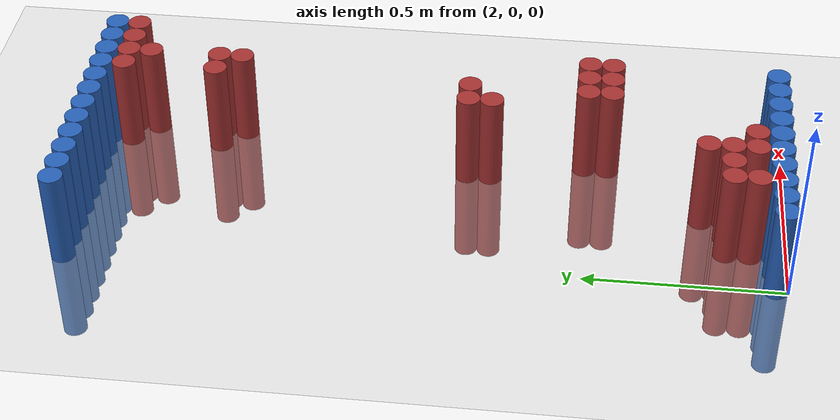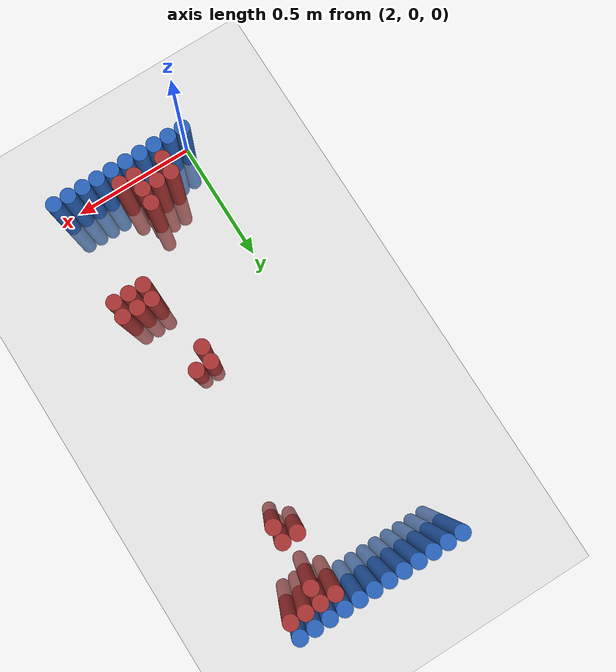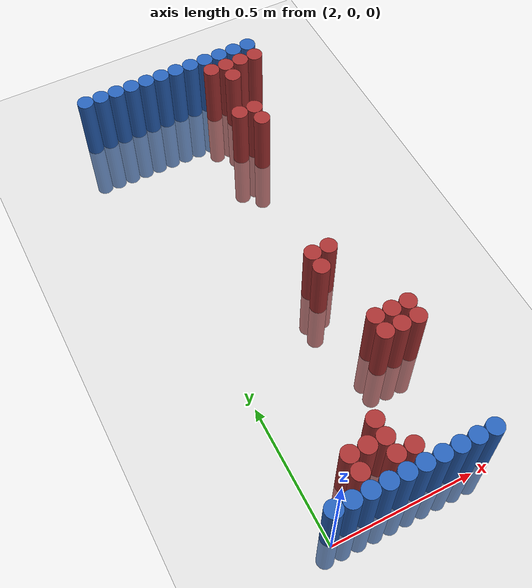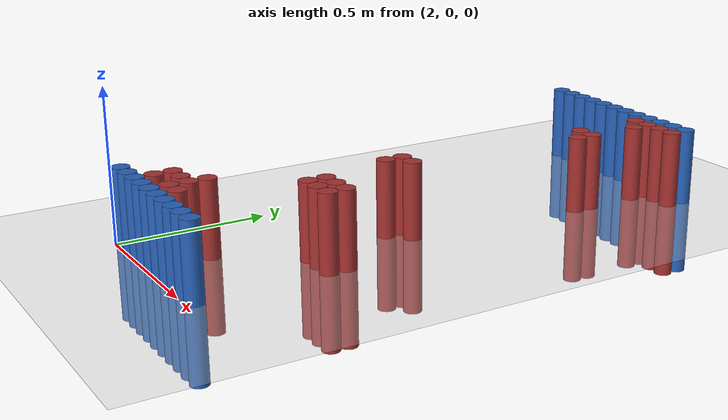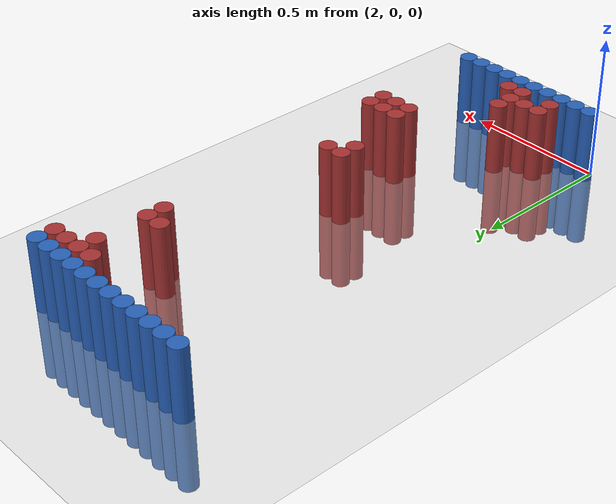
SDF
<sdf version="1.6">
 <world name="default">
  <model name="ground_plane">
   <static>1</static>
   <link name="link">
    <collision name="collision">
     <geometry><plane><normal>0 0 1</normal><size>100 100</size></plane></geometry>
     <surface><friction><ode><mu>100</mu><mu2>50</mu2></ode></friction></surface>
    </collision>
    <visual name="visual">
     <cast_shadows>0</cast_shadows>
     <geometry><plane><normal>0 0 1</normal><size>100 100</size></plane></geometry>
     <material>
      <script><uri>file://media/materials/scripts/gazebo.material</uri><name>Gazebo/Grey</name></script>
     </material>
    </visual>
   </link>
  </model>
  <model name="unit_cylinder_92">
   <static>1</static>
   <pose>1.950000 1.770000 0.000000 0.000000 0.000000 0.000000</pose>
   <link name="link">
    <inertial>
     <mass>1</mass>
     <inertia><ixx>0.145833</ixx><ixy>0</ixy><ixz>0</ixz><iyy>0.145833</iyy><iyz>0</iyz><izz>0.125</izz></inertia>
    </inertial>
    <collision name="collision">
     <geometry><cylinder><radius>0.030000</radius><length>0.5</length></cylinder></geometry>
    </collision>
    <visual name="visual">
     <geometry><cylinder><radius>0.030000</radius><length>0.5</length></cylinder></geometry>
     <material>
      <ambient>0.152000 0.379000 0.720000 1</ambient>
      <diffuse>0.152000 0.379000 0.720000 1</diffuse>
     </material>
     <material>
      <script><name>Gazebo/Grey</name><uri>file://media/materials/scripts/gazebo.material</uri></script>
     </material>
    </visual>
   </link>
  </model>
  <model name="unit_cylinder_93">
   <static>1</static>
   <pose>2.010000 0.030000 0.000000 0.000000 0.000000 0.000000</pose>
   <link name="link">
    <inertial>
     <mass>1</mass>
     <inertia><ixx>0.145833</ixx><ixy>0</ixy><ixz>0</ixz><iyy>0.145833</iyy><iyz>0</iyz><izz>0.125</izz></inertia>
    </inertial>
    <collision name="collision">
     <geometry><cylinder><radius>0.030000</radius><length>0.5</length></cylinder></geometry>
    </collision>
    <visual name="visual">
     <geometry><cylinder><radius>0.030000</radius><length>0.5</length></cylinder></geometry>
     <material>
      <ambient>0.152000 0.379000 0.720000 1</ambient>
      <diffuse>0.152000 0.379000 0.720000 1</diffuse>
     </material>
     <material>
      <script><name>Gazebo/Grey</name><uri>file://media/materials/scripts/gazebo.material</uri></script>
     </material>
    </visual>
   </link>
  </model>
  <model name="unit_cylinder_94">
   <static>1</static>
   <pose>2.010000 1.770000 0.000000 0.000000 0.000000 0.000000</pose>
   <link name="link">
    <inertial>
     <mass>1</mass>
     <inertia><ixx>0.145833</ixx><ixy>0</ixy><ixz>0</ixz><iyy>0.145833</iyy><iyz>0</iyz><izz>0.125</izz></inertia>
    </inertial>
    <collision name="collision">
     <geometry><cylinder><radius>0.030000</radius><length>0.5</length></cylinder></geometry>
    </collision>
    <visual name="visual">
     <geometry><cylinder><radius>0.030000</radius><length>0.5</length></cylinder></geometry>
     <material>
      <ambient>0.152000 0.379000 0.720000 1</ambient>
      <diffuse>0.152000 0.379000 0.720000 1</diffuse>
     </material>
     <material>
      <script><name>Gazebo/Grey</name><uri>file://media/materials/scripts/gazebo.material</uri></script>
     </material>
    </visual>
   </link>
  </model>
  <model name="unit_cylinder_95">
   <static>1</static>
   <pose>2.070000 1.770000 0.000000 0.000000 0.000000 0.000000</pose>
   <link name="link">
    <inertial>
     <mass>1</mass>
     <inertia><ixx>0.145833</ixx><ixy>0</ixy><ixz>0</ixz><iyy>0.145833</iyy><iyz>0</iyz><izz>0.125</izz></inertia>
    </inertial>
    <collision name="collision">
     <geometry><cylinder><radius>0.030000</radius><length>0.5</length></cylinder></geometry>
    </collision>
    <visual name="visual">
     <geometry><cylinder><radius>0.030000</radius><length>0.5</length></cylinder></geometry>
     <material>
      <ambient>0.152000 0.379000 0.720000 1</ambient>
      <diffuse>0.152000 0.379000 0.720000 1</diffuse>
     </material>
     <material>
      <script><name>Gazebo/Grey</name><uri>file://media/materials/scripts/gazebo.material</uri></script>
     </material>
    </visual>
   </link>
  </model>
  <model name="unit_cylinder_96">
   <static>1</static>
   <pose>2.130000 1.770000 0.000000 0.000000 0.000000 0.000000</pose>
   <link name="link">
    <inertial>
     <mass>1</mass>
     <inertia><ixx>0.145833</ixx><ixy>0</ixy><ixz>0</ixz><iyy>0.145833</iyy><iyz>0</iyz><izz>0.125</izz></inertia>
    </inertial>
    <collision name="collision">
     <geometry><cylinder><radius>0.030000</radius><length>0.5</length></cylinder></geometry>
    </collision>
    <visual name="visual">
     <geometry><cylinder><radius>0.030000</radius><length>0.5</length></cylinder></geometry>
     <material>
      <ambient>0.152000 0.379000 0.720000 1</ambient>
      <diffuse>0.152000 0.379000 0.720000 1</diffuse>
     </material>
     <material>
      <script><name>Gazebo/Grey</name><uri>file://media/materials/scripts/gazebo.material</uri></script>
     </material>
    </visual>
   </link>
  </model>
  <model name="unit_cylinder_97">
   <static>1</static>
   <pose>2.190000 1.770000 0.000000 0.000000 0.000000 0.000000</pose>
   <link name="link">
    <inertial>
     <mass>1</mass>
     <inertia><ixx>0.145833</ixx><ixy>0</ixy><ixz>0</ixz><iyy>0.145833</iyy><iyz>0</iyz><izz>0.125</izz></inertia>
    </inertial>
    <collision name="collision">
     <geometry><cylinder><radius>0.030000</radius><length>0.5</length></cylinder></geometry>
    </collision>
    <visual name="visual">
     <geometry><cylinder><radius>0.030000</radius><length>0.5</length></cylinder></geometry>
     <material>
      <ambient>0.152000 0.379000 0.720000 1</ambient>
      <diffuse>0.152000 0.379000 0.720000 1</diffuse>
     </material>
     <material>
      <script><name>Gazebo/Grey</name><uri>file://media/materials/scripts/gazebo.material</uri></script>
     </material>
    </visual>
   </link>
  </model>
  <model name="unit_cylinder_98">
   <static>1</static>
   <pose>2.250000 1.770000 0.000000 0.000000 0.000000 0.000000</pose>
   <link name="link">
    <inertial>
     <mass>1</mass>
     <inertia><ixx>0.145833</ixx><ixy>0</ixy><ixz>0</ixz><iyy>0.145833</iyy><iyz>0</iyz><izz>0.125</izz></inertia>
    </inertial>
    <collision name="collision">
     <geometry><cylinder><radius>0.030000</radius><length>0.5</length></cylinder></geometry>
    </collision>
    <visual name="visual">
     <geometry><cylinder><radius>0.030000</radius><length>0.5</length></cylinder></geometry>
     <material>
      <ambient>0.152000 0.379000 0.720000 1</ambient>
      <diffuse>0.152000 0.379000 0.720000 1</diffuse>
     </material>
     <material>
      <script><name>Gazebo/Grey</name><uri>file://media/materials/scripts/gazebo.material</uri></script>
     </material>
    </visual>
   </link>
  </model>
  <model name="unit_cylinder_99">
   <static>1</static>
   <pose>2.310000 1.770000 0.000000 0.000000 0.000000 0.000000</pose>
   <link name="link">
    <inertial>
     <mass>1</mass>
     <inertia><ixx>0.145833</ixx><ixy>0</ixy><ixz>0</ixz><iyy>0.145833</iyy><iyz>0</iyz><izz>0.125</izz></inertia>
    </inertial>
    <collision name="collision">
     <geometry><cylinder><radius>0.030000</radius><length>0.5</length></cylinder></geometry>
    </collision>
    <visual name="visual">
     <geometry><cylinder><radius>0.030000</radius><length>0.5</length></cylinder></geometry>
     <material>
      <ambient>0.152000 0.379000 0.720000 1</ambient>
      <diffuse>0.152000 0.379000 0.720000 1</diffuse>
     </material>
     <material>
      <script><name>Gazebo/Grey</name><uri>file://media/materials/scripts/gazebo.material</uri></script>
     </material>
    </visual>
   </link>
  </model>
  <model name="unit_cylinder_100">
   <static>1</static>
   <pose>2.370000 1.770000 0.000000 0.000000 0.000000 0.000000</pose>
   <link name="link">
    <inertial>
     <mass>1</mass>
     <inertia><ixx>0.145833</ixx><ixy>0</ixy><ixz>0</ixz><iyy>0.145833</iyy><iyz>0</iyz><izz>0.125</izz></inertia>
    </inertial>
    <collision name="collision">
     <geometry><cylinder><radius>0.030000</radius><length>0.5</length></cylinder></geometry>
    </collision>
    <visual name="visual">
     <geometry><cylinder><radius>0.030000</radius><length>0.5</length></cylinder></geometry>
     <material>
      <ambient>0.152000 0.379000 0.720000 1</ambient>
      <diffuse>0.152000 0.379000 0.720000 1</diffuse>
     </material>
     <material>
      <script><name>Gazebo/Grey</name><uri>file://media/materials/scripts/gazebo.material</uri></script>
     </material>
    </visual>
   </link>
  </model>
  <model name="unit_cylinder_101">
   <static>1</static>
   <pose>2.430000 1.770000 0.000000 0.000000 0.000000 0.000000</pose>
   <link name="link">
    <inertial>
     <mass>1</mass>
     <inertia><ixx>0.145833</ixx><ixy>0</ixy><ixz>0</ixz><iyy>0.145833</iyy><iyz>0</iyz><izz>0.125</izz></inertia>
    </inertial>
    <collision name="collision">
     <geometry><cylinder><radius>0.030000</radius><length>0.5</length></cylinder></geometry>
    </collision>
    <visual name="visual">
     <geometry><cylinder><radius>0.030000</radius><length>0.5</length></cylinder></geometry>
     <material>
      <ambient>0.152000 0.379000 0.720000 1</ambient>
      <diffuse>0.152000 0.379000 0.720000 1</diffuse>
     </material>
     <material>
      <script><name>Gazebo/Grey</name><uri>file://media/materials/scripts/gazebo.material</uri></script>
     </material>
    </visual>
   </link>
  </model>
  <model name="unit_cylinder_102">
   <static>1</static>
   <pose>2.490000 1.770000 0.000000 0.000000 0.000000 0.000000</pose>
   <link name="link">
    <inertial>
     <mass>1</mass>
     <inertia><ixx>0.145833</ixx><ixy>0</ixy><ixz>0</ixz><iyy>0.145833</iyy><iyz>0</iyz><izz>0.125</izz></inertia>
    </inertial>
    <collision name="collision">
     <geometry><cylinder><radius>0.030000</radius><length>0.5</length></cylinder></geometry>
    </collision>
    <visual name="visual">
     <geometry><cylinder><radius>0.030000</radius><length>0.5</length></cylinder></geometry>
     <material>
      <ambient>0.152000 0.379000 0.720000 1</ambient>
      <diffuse>0.152000 0.379000 0.720000 1</diffuse>
     </material>
     <material>
      <script><name>Gazebo/Grey</name><uri>file://media/materials/scripts/gazebo.material</uri></script>
     </material>
    </visual>
   </link>
  </model>
  <model name="unit_cylinder_103">
   <static>1</static>
   <pose>2.550000 1.770000 0.000000 0.000000 0.000000 0.000000</pose>
   <link name="link">
    <inertial>
     <mass>1</mass>
     <inertia><ixx>0.145833</ixx><ixy>0</ixy><ixz>0</ixz><iyy>0.145833</iyy><iyz>0</iyz><izz>0.125</izz></inertia>
    </inertial>
    <collision name="collision">
     <geometry><cylinder><radius>0.030000</radius><length>0.5</length></cylinder></geometry>
    </collision>
    <visual name="visual">
     <geometry><cylinder><radius>0.030000</radius><length>0.5</length></cylinder></geometry>
     <material>
      <ambient>0.152000 0.379000 0.720000 1</ambient>
      <diffuse>0.152000 0.379000 0.720000 1</diffuse>
     </material>
     <material>
      <script><name>Gazebo/Grey</name><uri>file://media/materials/scripts/gazebo.material</uri></script>
     </material>
    </visual>
   </link>
  </model>
  <model name="unit_cylinder_104">
   <static>1</static>
   <pose>2.610000 1.770000 0.000000 0.000000 0.000000 0.000000</pose>
   <link name="link">
    <inertial>
     <mass>1</mass>
     <inertia><ixx>0.145833</ixx><ixy>0</ixy><ixz>0</ixz><iyy>0.145833</iyy><iyz>0</iyz><izz>0.125</izz></inertia>
    </inertial>
    <collision name="collision">
     <geometry><cylinder><radius>0.030000</radius><length>0.5</length></cylinder></geometry>
    </collision>
    <visual name="visual">
     <geometry><cylinder><radius>0.030000</radius><length>0.5</length></cylinder></geometry>
     <material>
      <ambient>0.152000 0.379000 0.720000 1</ambient>
      <diffuse>0.152000 0.379000 0.720000 1</diffuse>
     </material>
     <material>
      <script><name>Gazebo/Grey</name><uri>file://media/materials/scripts/gazebo.material</uri></script>
     </material>
    </visual>
   </link>
  </model>
  <model name="unit_cylinder_125">
   <static>1</static>
   <pose>2.430000 1.710000 0.000000 0.000000 0.000000 0.000000</pose>
   <link name="link">
    <inertial>
     <mass>1</mass>
     <inertia><ixx>0.145833</ixx><ixy>0</ixy><ixz>0</ixz><iyy>0.145833</iyy><iyz>0</iyz><izz>0.125</izz></inertia>
    </inertial>
    <collision name="collision">
     <geometry><cylinder><radius>0.030000</radius><length>0.5</length></cylinder></geometry>
    </collision>
    <visual name="visual">
     <geometry><cylinder><radius>0.030000</radius><length>0.5</length></cylinder></geometry>
     <material>
      <ambient>0.648000 0.192000 0.192000 1</ambient>
      <diffuse>0.648000 0.192000 0.192000 1</diffuse>
     </material>
     <material>
      <script><name>Gazebo/Grey</name><uri>file://media/materials/scripts/gazebo.material</uri></script>
     </material>
    </visual>
   </link>
  </model>
  <model name="unit_cylinder_126">
   <static>1</static>
   <pose>2.490000 1.710000 0.000000 0.000000 0.000000 0.000000</pose>
   <link name="link">
    <inertial>
     <mass>1</mass>
     <inertia><ixx>0.145833</ixx><ixy>0</ixy><ixz>0</ixz><iyy>0.145833</iyy><iyz>0</iyz><izz>0.125</izz></inertia>
    </inertial>
    <collision name="collision">
     <geometry><cylinder><radius>0.030000</radius><length>0.5</length></cylinder></geometry>
    </collision>
    <visual name="visual">
     <geometry><cylinder><radius>0.030000</radius><length>0.5</length></cylinder></geometry>
     <material>
      <ambient>0.648000 0.192000 0.192000 1</ambient>
      <diffuse>0.648000 0.192000 0.192000 1</diffuse>
     </material>
     <material>
      <script><name>Gazebo/Grey</name><uri>file://media/materials/scripts/gazebo.material</uri></script>
     </material>
    </visual>
   </link>
  </model>
  <model name="unit_cylinder_127">
   <static>1</static>
   <pose>2.550000 1.710000 0.000000 0.000000 0.000000 0.000000</pose>
   <link name="link">
    <inertial>
     <mass>1</mass>
     <inertia><ixx>0.145833</ixx><ixy>0</ixy><ixz>0</ixz><iyy>0.145833</iyy><iyz>0</iyz><izz>0.125</izz></inertia>
    </inertial>
    <collision name="collision">
     <geometry><cylinder><radius>0.030000</radius><length>0.5</length></cylinder></geometry>
    </collision>
    <visual name="visual">
     <geometry><cylinder><radius>0.030000</radius><length>0.5</length></cylinder></geometry>
     <material>
      <ambient>0.648000 0.192000 0.192000 1</ambient>
      <diffuse>0.648000 0.192000 0.192000 1</diffuse>
     </material>
     <material>
      <script><name>Gazebo/Grey</name><uri>file://media/materials/scripts/gazebo.material</uri></script>
     </material>
    </visual>
   </link>
  </model>
  <model name="unit_cylinder_128">
   <static>1</static>
   <pose>2.610000 1.710000 0.000000 0.000000 0.000000 0.000000</pose>
   <link name="link">
    <inertial>
     <mass>1</mass>
     <inertia><ixx>0.145833</ixx><ixy>0</ixy><ixz>0</ixz><iyy>0.145833</iyy><iyz>0</iyz><izz>0.125</izz></inertia>
    </inertial>
    <collision name="collision">
     <geometry><cylinder><radius>0.030000</radius><length>0.5</length></cylinder></geometry>
    </collision>
    <visual name="visual">
     <geometry><cylinder><radius>0.030000</radius><length>0.5</length></cylinder></geometry>
     <material>
      <ambient>0.648000 0.192000 0.192000 1</ambient>
      <diffuse>0.648000 0.192000 0.192000 1</diffuse>
     </material>
     <material>
      <script><name>Gazebo/Grey</name><uri>file://media/materials/scripts/gazebo.material</uri></script>
     </material>
    </visual>
   </link>
  </model>
  <model name="unit_cylinder_138">
   <static>1</static>
   <pose>2.490000 1.650000 0.000000 0.000000 0.000000 0.000000</pose>
   <link name="link">
    <inertial>
     <mass>1</mass>
     <inertia><ixx>0.145833</ixx><ixy>0</ixy><ixz>0</ixz><iyy>0.145833</iyy><iyz>0</iyz><izz>0.125</izz></inertia>
    </inertial>
    <collision name="collision">
     <geometry><cylinder><radius>0.030000</radius><length>0.5</length></cylinder></geometry>
    </collision>
    <visual name="visual">
     <geometry><cylinder><radius>0.030000</radius><length>0.5</length></cylinder></geometry>
     <material>
      <ambient>0.648000 0.192000 0.192000 1</ambient>
      <diffuse>0.648000 0.192000 0.192000 1</diffuse>
     </material>
     <material>
      <script><name>Gazebo/Grey</name><uri>file://media/materials/scripts/gazebo.material</uri></script>
     </material>
    </visual>
   </link>
  </model>
  <model name="unit_cylinder_153">
   <static>1</static>
   <pose>2.430000 1.470000 0.000000 0.000000 0.000000 0.000000</pose>
   <link name="link">
    <inertial>
     <mass>1</mass>
     <inertia><ixx>0.145833</ixx><ixy>0</ixy><ixz>0</ixz><iyy>0.145833</iyy><iyz>0</iyz><izz>0.125</izz></inertia>
    </inertial>
    <collision name="collision">
     <geometry><cylinder><radius>0.030000</radius><length>0.5</length></cylinder></geometry>
    </collision>
    <visual name="visual">
     <geometry><cylinder><radius>0.030000</radius><length>0.5</length></cylinder></geometry>
     <material>
      <ambient>0.648000 0.192000 0.192000 1</ambient>
      <diffuse>0.648000 0.192000 0.192000 1</diffuse>
     </material>
     <material>
      <script><name>Gazebo/Grey</name><uri>file://media/materials/scripts/gazebo.material</uri></script>
     </material>
    </visual>
   </link>
  </model>
  <model name="unit_cylinder_154">
   <static>1</static>
   <pose>2.490000 1.470000 0.000000 0.000000 0.000000 0.000000</pose>
   <link name="link">
    <inertial>
     <mass>1</mass>
     <inertia><ixx>0.145833</ixx><ixy>0</ixy><ixz>0</ixz><iyy>0.145833</iyy><iyz>0</iyz><izz>0.125</izz></inertia>
    </inertial>
    <collision name="collision">
     <geometry><cylinder><radius>0.030000</radius><length>0.5</length></cylinder></geometry>
    </collision>
    <visual name="visual">
     <geometry><cylinder><radius>0.030000</radius><length>0.5</length></cylinder></geometry>
     <material>
      <ambient>0.648000 0.192000 0.192000 1</ambient>
      <diffuse>0.648000 0.192000 0.192000 1</diffuse>
     </material>
     <material>
      <script><name>Gazebo/Grey</name><uri>file://media/materials/scripts/gazebo.material</uri></script>
     </material>
    </visual>
   </link>
  </model>
  <model name="unit_cylinder_155">
   <static>1</static>
   <pose>2.490000 1.410000 0.000000 0.000000 0.000000 0.000000</pose>
   <link name="link">
    <inertial>
     <mass>1</mass>
     <inertia><ixx>0.145833</ixx><ixy>0</ixy><ixz>0</ixz><iyy>0.145833</iyy><iyz>0</iyz><izz>0.125</izz></inertia>
    </inertial>
    <collision name="collision">
     <geometry><cylinder><radius>0.030000</radius><length>0.5</length></cylinder></geometry>
    </collision>
    <visual name="visual">
     <geometry><cylinder><radius>0.030000</radius><length>0.5</length></cylinder></geometry>
     <material>
      <ambient>0.648000 0.192000 0.192000 1</ambient>
      <diffuse>0.648000 0.192000 0.192000 1</diffuse>
     </material>
     <material>
      <script><name>Gazebo/Grey</name><uri>file://media/materials/scripts/gazebo.material</uri></script>
     </material>
    </visual>
   </link>
  </model>
  <model name="unit_cylinder_164">
   <static>1</static>
   <pose>2.370000 0.810000 0.000000 0.000000 0.000000 0.000000</pose>
   <link name="link">
    <inertial>
     <mass>1</mass>
     <inertia><ixx>0.145833</ixx><ixy>0</ixy><ixz>0</ixz><iyy>0.145833</iyy><iyz>0</iyz><izz>0.125</izz></inertia>
    </inertial>
    <collision name="collision">
     <geometry><cylinder><radius>0.030000</radius><length>0.5</length></cylinder></geometry>
    </collision>
    <visual name="visual">
     <geometry><cylinder><radius>0.030000</radius><length>0.5</length></cylinder></geometry>
     <material>
      <ambient>0.648000 0.192000 0.192000 1</ambient>
      <diffuse>0.648000 0.192000 0.192000 1</diffuse>
     </material>
     <material>
      <script><name>Gazebo/Grey</name><uri>file://media/materials/scripts/gazebo.material</uri></script>
     </material>
    </visual>
   </link>
  </model>
  <model name="unit_cylinder_165">
   <static>1</static>
   <pose>2.430000 0.810000 0.000000 0.000000 0.000000 0.000000</pose>
   <link name="link">
    <inertial>
     <mass>1</mass>
     <inertia><ixx>0.145833</ixx><ixy>0</ixy><ixz>0</ixz><iyy>0.145833</iyy><iyz>0</iyz><izz>0.125</izz></inertia>
    </inertial>
    <collision name="collision">
     <geometry><cylinder><radius>0.030000</radius><length>0.5</length></cylinder></geometry>
    </collision>
    <visual name="visual">
     <geometry><cylinder><radius>0.030000</radius><length>0.5</length></cylinder></geometry>
     <material>
      <ambient>0.648000 0.192000 0.192000 1</ambient>
      <diffuse>0.648000 0.192000 0.192000 1</diffuse>
     </material>
     <material>
      <script><name>Gazebo/Grey</name><uri>file://media/materials/scripts/gazebo.material</uri></script>
     </material>
    </visual>
   </link>
  </model>
  <model name="unit_cylinder_167">
   <static>1</static>
   <pose>2.370000 0.750000 0.000000 0.000000 0.000000 0.000000</pose>
   <link name="link">
    <inertial>
     <mass>1</mass>
     <inertia><ixx>0.145833</ixx><ixy>0</ixy><ixz>0</ixz><iyy>0.145833</iyy><iyz>0</iyz><izz>0.125</izz></inertia>
    </inertial>
    <collision name="collision">
     <geometry><cylinder><radius>0.030000</radius><length>0.5</length></cylinder></geometry>
    </collision>
    <visual name="visual">
     <geometry><cylinder><radius>0.030000</radius><length>0.5</length></cylinder></geometry>
     <material>
      <ambient>0.648000 0.192000 0.192000 1</ambient>
      <diffuse>0.648000 0.192000 0.192000 1</diffuse>
     </material>
     <material>
      <script><name>Gazebo/Grey</name><uri>file://media/materials/scripts/gazebo.material</uri></script>
     </material>
    </visual>
   </link>
  </model>
  <model name="unit_cylinder_168">
   <static>1</static>
   <pose>2.430000 0.510000 0.000000 0.000000 0.000000 0.000000</pose>
   <link name="link">
    <inertial>
     <mass>1</mass>
     <inertia><ixx>0.145833</ixx><ixy>0</ixy><ixz>0</ixz><iyy>0.145833</iyy><iyz>0</iyz><izz>0.125</izz></inertia>
    </inertial>
    <collision name="collision">
     <geometry><cylinder><radius>0.030000</radius><length>0.5</length></cylinder></geometry>
    </collision>
    <visual name="visual">
     <geometry><cylinder><radius>0.030000</radius><length>0.5</length></cylinder></geometry>
     <material>
      <ambient>0.648000 0.192000 0.192000 1</ambient>
      <diffuse>0.648000 0.192000 0.192000 1</diffuse>
     </material>
     <material>
      <script><name>Gazebo/Grey</name><uri>file://media/materials/scripts/gazebo.material</uri></script>
     </material>
    </visual>
   </link>
  </model>
  <model name="unit_cylinder_169">
   <static>1</static>
   <pose>2.490000 0.510000 0.000000 0.000000 0.000000 0.000000</pose>
   <link name="link">
    <inertial>
     <mass>1</mass>
     <inertia><ixx>0.145833</ixx><ixy>0</ixy><ixz>0</ixz><iyy>0.145833</iyy><iyz>0</iyz><izz>0.125</izz></inertia>
    </inertial>
    <collision name="collision">
     <geometry><cylinder><radius>0.030000</radius><length>0.5</length></cylinder></geometry>
    </collision>
    <visual name="visual">
     <geometry><cylinder><radius>0.030000</radius><length>0.5</length></cylinder></geometry>
     <material>
      <ambient>0.648000 0.192000 0.192000 1</ambient>
      <diffuse>0.648000 0.192000 0.192000 1</diffuse>
     </material>
     <material>
      <script><name>Gazebo/Grey</name><uri>file://media/materials/scripts/gazebo.material</uri></script>
     </material>
    </visual>
   </link>
  </model>
  <model name="unit_cylinder_170">
   <static>1</static>
   <pose>2.550000 0.510000 0.000000 0.000000 0.000000 0.000000</pose>
   <link name="link">
    <inertial>
     <mass>1</mass>
     <inertia><ixx>0.145833</ixx><ixy>0</ixy><ixz>0</ixz><iyy>0.145833</iyy><iyz>0</iyz><izz>0.125</izz></inertia>
    </inertial>
    <collision name="collision">
     <geometry><cylinder><radius>0.030000</radius><length>0.5</length></cylinder></geometry>
    </collision>
    <visual name="visual">
     <geometry><cylinder><radius>0.030000</radius><length>0.5</length></cylinder></geometry>
     <material>
      <ambient>0.648000 0.192000 0.192000 1</ambient>
      <diffuse>0.648000 0.192000 0.192000 1</diffuse>
     </material>
     <material>
      <script><name>Gazebo/Grey</name><uri>file://media/materials/scripts/gazebo.material</uri></script>
     </material>
    </visual>
   </link>
  </model>
  <model name="unit_cylinder_171">
   <static>1</static>
   <pose>2.430000 0.450000 0.000000 0.000000 0.000000 0.000000</pose>
   <link name="link">
    <inertial>
     <mass>1</mass>
     <inertia><ixx>0.145833</ixx><ixy>0</ixy><ixz>0</ixz><iyy>0.145833</iyy><iyz>0</iyz><izz>0.125</izz></inertia>
    </inertial>
    <collision name="collision">
     <geometry><cylinder><radius>0.030000</radius><length>0.5</length></cylinder></geometry>
    </collision>
    <visual name="visual">
     <geometry><cylinder><radius>0.030000</radius><length>0.5</length></cylinder></geometry>
     <material>
      <ambient>0.648000 0.192000 0.192000 1</ambient>
      <diffuse>0.648000 0.192000 0.192000 1</diffuse>
     </material>
     <material>
      <script><name>Gazebo/Grey</name><uri>file://media/materials/scripts/gazebo.material</uri></script>
     </material>
    </visual>
   </link>
  </model>
  <model name="unit_cylinder_172">
   <static>1</static>
   <pose>2.490000 0.450000 0.000000 0.000000 0.000000 0.000000</pose>
   <link name="link">
    <inertial>
     <mass>1</mass>
     <inertia><ixx>0.145833</ixx><ixy>0</ixy><ixz>0</ixz><iyy>0.145833</iyy><iyz>0</iyz><izz>0.125</izz></inertia>
    </inertial>
    <collision name="collision">
     <geometry><cylinder><radius>0.030000</radius><length>0.5</length></cylinder></geometry>
    </collision>
    <visual name="visual">
     <geometry><cylinder><radius>0.030000</radius><length>0.5</length></cylinder></geometry>
     <material>
      <ambient>0.648000 0.192000 0.192000 1</ambient>
      <diffuse>0.648000 0.192000 0.192000 1</diffuse>
     </material>
     <material>
      <script><name>Gazebo/Grey</name><uri>file://media/materials/scripts/gazebo.material</uri></script>
     </material>
    </visual>
   </link>
  </model>
  <model name="unit_cylinder_173">
   <static>1</static>
   <pose>2.550000 0.450000 0.000000 0.000000 0.000000 0.000000</pose>
   <link name="link">
    <inertial>
     <mass>1</mass>
     <inertia><ixx>0.145833</ixx><ixy>0</ixy><ixz>0</ixz><iyy>0.145833</iyy><iyz>0</iyz><izz>0.125</izz></inertia>
    </inertial>
    <collision name="collision">
     <geometry><cylinder><radius>0.030000</radius><length>0.5</length></cylinder></geometry>
    </collision>
    <visual name="visual">
     <geometry><cylinder><radius>0.030000</radius><length>0.5</length></cylinder></geometry>
     <material>
      <ambient>0.648000 0.192000 0.192000 1</ambient>
      <diffuse>0.648000 0.192000 0.192000 1</diffuse>
     </material>
     <material>
      <script><name>Gazebo/Grey</name><uri>file://media/materials/scripts/gazebo.material</uri></script>
     </material>
    </visual>
   </link>
  </model>
  <model name="unit_cylinder_181">
   <static>1</static>
   <pose>2.250000 0.210000 0.000000 0.000000 0.000000 0.000000</pose>
   <link name="link">
    <inertial>
     <mass>1</mass>
     <inertia><ixx>0.145833</ixx><ixy>0</ixy><ixz>0</ixz><iyy>0.145833</iyy><iyz>0</iyz><izz>0.125</izz></inertia>
    </inertial>
    <collision name="collision">
     <geometry><cylinder><radius>0.030000</radius><length>0.5</length></cylinder></geometry>
    </collision>
    <visual name="visual">
     <geometry><cylinder><radius>0.030000</radius><length>0.5</length></cylinder></geometry>
     <material>
      <ambient>0.648000 0.192000 0.192000 1</ambient>
      <diffuse>0.648000 0.192000 0.192000 1</diffuse>
     </material>
     <material>
      <script><name>Gazebo/Grey</name><uri>file://media/materials/scripts/gazebo.material</uri></script>
     </material>
    </visual>
   </link>
  </model>
  <model name="unit_cylinder_184">
   <static>1</static>
   <pose>2.130000 0.150000 0.000000 0.000000 0.000000 0.000000</pose>
   <link name="link">
    <inertial>
     <mass>1</mass>
     <inertia><ixx>0.145833</ixx><ixy>0</ixy><ixz>0</ixz><iyy>0.145833</iyy><iyz>0</iyz><izz>0.125</izz></inertia>
    </inertial>
    <collision name="collision">
     <geometry><cylinder><radius>0.030000</radius><length>0.5</length></cylinder></geometry>
    </collision>
    <visual name="visual">
     <geometry><cylinder><radius>0.030000</radius><length>0.5</length></cylinder></geometry>
     <material>
      <ambient>0.648000 0.192000 0.192000 1</ambient>
      <diffuse>0.648000 0.192000 0.192000 1</diffuse>
     </material>
     <material>
      <script><name>Gazebo/Grey</name><uri>file://media/materials/scripts/gazebo.material</uri></script>
     </material>
    </visual>
   </link>
  </model>
  <model name="unit_cylinder_185">
   <static>1</static>
   <pose>2.190000 0.150000 0.000000 0.000000 0.000000 0.000000</pose>
   <link name="link">
    <inertial>
     <mass>1</mass>
     <inertia><ixx>0.145833</ixx><ixy>0</ixy><ixz>0</ixz><iyy>0.145833</iyy><iyz>0</iyz><izz>0.125</izz></inertia>
    </inertial>
    <collision name="collision">
     <geometry><cylinder><radius>0.030000</radius><length>0.5</length></cylinder></geometry>
    </collision>
    <visual name="visual">
     <geometry><cylinder><radius>0.030000</radius><length>0.5</length></cylinder></geometry>
     <material>
      <ambient>0.648000 0.192000 0.192000 1</ambient>
      <diffuse>0.648000 0.192000 0.192000 1</diffuse>
     </material>
     <material>
      <script><name>Gazebo/Grey</name><uri>file://media/materials/scripts/gazebo.material</uri></script>
     </material>
    </visual>
   </link>
  </model>
  <model name="unit_cylinder_186">
   <static>1</static>
   <pose>2.250000 0.150000 0.000000 0.000000 0.000000 0.000000</pose>
   <link name="link">
    <inertial>
     <mass>1</mass>
     <inertia><ixx>0.145833</ixx><ixy>0</ixy><ixz>0</ixz><iyy>0.145833</iyy><iyz>0</iyz><izz>0.125</izz></inertia>
    </inertial>
    <collision name="collision">
     <geometry><cylinder><radius>0.030000</radius><length>0.5</length></cylinder></geometry>
    </collision>
    <visual name="visual">
     <geometry><cylinder><radius>0.030000</radius><length>0.5</length></cylinder></geometry>
     <material>
      <ambient>0.648000 0.192000 0.192000 1</ambient>
      <diffuse>0.648000 0.192000 0.192000 1</diffuse>
     </material>
     <material>
      <script><name>Gazebo/Grey</name><uri>file://media/materials/scripts/gazebo.material</uri></script>
     </material>
    </visual>
   </link>
  </model>
  <model name="unit_cylinder_190">
   <static>1</static>
   <pose>2.130000 0.090000 0.000000 0.000000 0.000000 0.000000</pose>
   <link name="link">
    <inertial>
     <mass>1</mass>
     <inertia><ixx>0.145833</ixx><ixy>0</ixy><ixz>0</ixz><iyy>0.145833</iyy><iyz>0</iyz><izz>0.125</izz></inertia>
    </inertial>
    <collision name="collision">
     <geometry><cylinder><radius>0.030000</radius><length>0.5</length></cylinder></geometry>
    </collision>
    <visual name="visual">
     <geometry><cylinder><radius>0.030000</radius><length>0.5</length></cylinder></geometry>
     <material>
      <ambient>0.648000 0.192000 0.192000 1</ambient>
      <diffuse>0.648000 0.192000 0.192000 1</diffuse>
     </material>
     <material>
      <script><name>Gazebo/Grey</name><uri>file://media/materials/scripts/gazebo.material</uri></script>
     </material>
    </visual>
   </link>
  </model>
  <model name="unit_cylinder_191">
   <static>1</static>
   <pose>2.250000 0.090000 0.000000 0.000000 0.000000 0.000000</pose>
   <link name="link">
    <inertial>
     <mass>1</mass>
     <inertia><ixx>0.145833</ixx><ixy>0</ixy><ixz>0</ixz><iyy>0.145833</iyy><iyz>0</iyz><izz>0.125</izz></inertia>
    </inertial>
    <collision name="collision">
     <geometry><cylinder><radius>0.030000</radius><length>0.5</length></cylinder></geometry>
    </collision>
    <visual name="visual">
     <geometry><cylinder><radius>0.030000</radius><length>0.5</length></cylinder></geometry>
     <material>
      <ambient>0.648000 0.192000 0.192000 1</ambient>
      <diffuse>0.648000 0.192000 0.192000 1</diffuse>
     </material>
     <material>
      <script><name>Gazebo/Grey</name><uri>file://media/materials/scripts/gazebo.material</uri></script>
     </material>
    </visual>
   </link>
  </model>
  <model name="unit_cylinder_192">
   <static>1</static>
   <pose>2.310000 0.090000 0.000000 0.000000 0.000000 0.000000</pose>
   <link name="link">
    <inertial>
     <mass>1</mass>
     <inertia><ixx>0.145833</ixx><ixy>0</ixy><ixz>0</ixz><iyy>0.145833</iyy><iyz>0</iyz><izz>0.125</izz></inertia>
    </inertial>
    <collision name="collision">
     <geometry><cylinder><radius>0.030000</radius><length>0.5</length></cylinder></geometry>
    </collision>
    <visual name="visual">
     <geometry><cylinder><radius>0.030000</radius><length>0.5</length></cylinder></geometry>
     <material>
      <ambient>0.648000 0.192000 0.192000 1</ambient>
      <diffuse>0.648000 0.192000 0.192000 1</diffuse>
     </material>
     <material>
      <script><name>Gazebo/Grey</name><uri>file://media/materials/scripts/gazebo.material</uri></script>
     </material>
    </visual>
   </link>
  </model>
  <model name="unit_cylinder_200">
   <static>1</static>
   <pose>2.070000 0.030000 0.000000 0.000000 0.000000 0.000000</pose>
   <link name="link">
    <inertial>
     <mass>1</mass>
     <inertia><ixx>0.145833</ixx><ixy>0</ixy><ixz>0</ixz><iyy>0.145833</iyy><iyz>0</iyz><izz>0.125</izz></inertia>
    </inertial>
    <collision name="collision">
     <geometry><cylinder><radius>0.030000</radius><length>0.5</length></cylinder></geometry>
    </collision>
    <visual name="visual">
     <geometry><cylinder><radius>0.030000</radius><length>0.5</length></cylinder></geometry>
     <material>
      <ambient>0.152000 0.379000 0.720000 1</ambient>
      <diffuse>0.152000 0.379000 0.720000 1</diffuse>
     </material>
     <material>
      <script><name>Gazebo/Grey</name><uri>file://media/materials/scripts/gazebo.material</uri></script>
     </material>
    </visual>
   </link>
  </model>
  <model name="unit_cylinder_201">
   <static>1</static>
   <pose>2.130000 0.030000 0.000000 0.000000 0.000000 0.000000</pose>
   <link name="link">
    <inertial>
     <mass>1</mass>
     <inertia><ixx>0.145833</ixx><ixy>0</ixy><ixz>0</ixz><iyy>0.145833</iyy><iyz>0</iyz><izz>0.125</izz></inertia>
    </inertial>
    <collision name="collision">
     <geometry><cylinder><radius>0.030000</radius><length>0.5</length></cylinder></geometry>
    </collision>
    <visual name="visual">
     <geometry><cylinder><radius>0.030000</radius><length>0.5</length></cylinder></geometry>
     <material>
      <ambient>0.152000 0.379000 0.720000 1</ambient>
      <diffuse>0.152000 0.379000 0.720000 1</diffuse>
     </material>
     <material>
      <script><name>Gazebo/Grey</name><uri>file://media/materials/scripts/gazebo.material</uri></script>
     </material>
    </visual>
   </link>
  </model>
  <model name="unit_cylinder_202">
   <static>1</static>
   <pose>2.190000 0.030000 0.000000 0.000000 0.000000 0.000000</pose>
   <link name="link">
    <inertial>
     <mass>1</mass>
     <inertia><ixx>0.145833</ixx><ixy>0</ixy><ixz>0</ixz><iyy>0.145833</iyy><iyz>0</iyz><izz>0.125</izz></inertia>
    </inertial>
    <collision name="collision">
     <geometry><cylinder><radius>0.030000</radius><length>0.5</length></cylinder></geometry>
    </collision>
    <visual name="visual">
     <geometry><cylinder><radius>0.030000</radius><length>0.5</length></cylinder></geometry>
     <material>
      <ambient>0.152000 0.379000 0.720000 1</ambient>
      <diffuse>0.152000 0.379000 0.720000 1</diffuse>
     </material>
     <material>
      <script><name>Gazebo/Grey</name><uri>file://media/materials/scripts/gazebo.material</uri></script>
     </material>
    </visual>
   </link>
  </model>
  <model name="unit_cylinder_203">
   <static>1</static>
   <pose>2.250000 0.030000 0.000000 0.000000 0.000000 0.000000</pose>
   <link name="link">
    <inertial>
     <mass>1</mass>
     <inertia><ixx>0.145833</ixx><ixy>0</ixy><ixz>0</ixz><iyy>0.145833</iyy><iyz>0</iyz><izz>0.125</izz></inertia>
    </inertial>
    <collision name="collision">
     <geometry><cylinder><radius>0.030000</radius><length>0.5</length></cylinder></geometry>
    </collision>
    <visual name="visual">
     <geometry><cylinder><radius>0.030000</radius><length>0.5</length></cylinder></geometry>
     <material>
      <ambient>0.152000 0.379000 0.720000 1</ambient>
      <diffuse>0.152000 0.379000 0.720000 1</diffuse>
     </material>
     <material>
      <script><name>Gazebo/Grey</name><uri>file://media/materials/scripts/gazebo.material</uri></script>
     </material>
    </visual>
   </link>
  </model>
  <model name="unit_cylinder_204">
   <static>1</static>
   <pose>2.310000 0.030000 0.000000 0.000000 0.000000 0.000000</pose>
   <link name="link">
    <inertial>
     <mass>1</mass>
     <inertia><ixx>0.145833</ixx><ixy>0</ixy><ixz>0</ixz><iyy>0.145833</iyy><iyz>0</iyz><izz>0.125</izz></inertia>
    </inertial>
    <collision name="collision">
     <geometry><cylinder><radius>0.030000</radius><length>0.5</length></cylinder></geometry>
    </collision>
    <visual name="visual">
     <geometry><cylinder><radius>0.030000</radius><length>0.5</length></cylinder></geometry>
     <material>
      <ambient>0.152000 0.379000 0.720000 1</ambient>
      <diffuse>0.152000 0.379000 0.720000 1</diffuse>
     </material>
     <material>
      <script><name>Gazebo/Grey</name><uri>file://media/materials/scripts/gazebo.material</uri></script>
     </material>
    </visual>
   </link>
  </model>
  <model name="unit_cylinder_205">
   <static>1</static>
   <pose>2.370000 0.030000 0.000000 0.000000 0.000000 0.000000</pose>
   <link name="link">
    <inertial>
     <mass>1</mass>
     <inertia><ixx>0.145833</ixx><ixy>0</ixy><ixz>0</ixz><iyy>0.145833</iyy><iyz>0</iyz><izz>0.125</izz></inertia>
    </inertial>
    <collision name="collision">
     <geometry><cylinder><radius>0.030000</radius><length>0.5</length></cylinder></geometry>
    </collision>
    <visual name="visual">
     <geometry><cylinder><radius>0.030000</radius><length>0.5</length></cylinder></geometry>
     <material>
      <ambient>0.152000 0.379000 0.720000 1</ambient>
      <diffuse>0.152000 0.379000 0.720000 1</diffuse>
     </material>
     <material>
      <script><name>Gazebo/Grey</name><uri>file://media/materials/scripts/gazebo.material</uri></script>
     </material>
    </visual>
   </link>
  </model>
  <model name="unit_cylinder_206">
   <static>1</static>
   <pose>2.430000 0.030000 0.000000 0.000000 0.000000 0.000000</pose>
   <link name="link">
    <inertial>
     <mass>1</mass>
     <inertia><ixx>0.145833</ixx><ixy>0</ixy><ixz>0</ixz><iyy>0.145833</iyy><iyz>0</iyz><izz>0.125</izz></inertia>
    </inertial>
    <collision name="collision">
     <geometry><cylinder><radius>0.030000</radius><length>0.5</length></cylinder></geometry>
    </collision>
    <visual name="visual">
     <geometry><cylinder><radius>0.030000</radius><length>0.5</length></cylinder></geometry>
     <material>
      <ambient>0.152000 0.379000 0.720000 1</ambient>
      <diffuse>0.152000 0.379000 0.720000 1</diffuse>
     </material>
     <material>
      <script><name>Gazebo/Grey</name><uri>file://media/materials/scripts/gazebo.material</uri></script>
     </material>
    </visual>
   </link>
  </model>
  <model name="unit_cylinder_207">
   <static>1</static>
   <pose>2.490000 0.030000 0.000000 0.000000 0.000000 0.000000</pose>
   <link name="link">
    <inertial>
     <mass>1</mass>
     <inertia><ixx>0.145833</ixx><ixy>0</ixy><ixz>0</ixz><iyy>0.145833</iyy><iyz>0</iyz><izz>0.125</izz></inertia>
    </inertial>
    <collision name="collision">
     <geometry><cylinder><radius>0.030000</radius><length>0.5</length></cylinder></geometry>
    </collision>
    <visual name="visual">
     <geometry><cylinder><radius>0.030000</radius><length>0.5</length></cylinder></geometry>
     <material>
      <ambient>0.152000 0.379000 0.720000 1</ambient>
      <diffuse>0.152000 0.379000 0.720000 1</diffuse>
     </material>
     <material>
      <script><name>Gazebo/Grey</name><uri>file://media/materials/scripts/gazebo.material</uri></script>
     </material>
    </visual>
   </link>
  </model>
  <model name="unit_cylinder_208">
   <static>1</static>
   <pose>2.550000 0.030000 0.000000 0.000000 0.000000 0.000000</pose>
   <link name="link">
    <inertial>
     <mass>1</mass>
     <inertia><ixx>0.145833</ixx><ixy>0</ixy><ixz>0</ixz><iyy>0.145833</iyy><iyz>0</iyz><izz>0.125</izz></inertia>
    </inertial>
    <collision name="collision">
     <geometry><cylinder><radius>0.030000</radius><length>0.5</length></cylinder></geometry>
    </collision>
    <visual name="visual">
     <geometry><cylinder><radius>0.030000</radius><length>0.5</length></cylinder></geometry>
     <material>
      <ambient>0.152000 0.379000 0.720000 1</ambient>
      <diffuse>0.152000 0.379000 0.720000 1</diffuse>
     </material>
     <material>
      <script><name>Gazebo/Grey</name><uri>file://media/materials/scripts/gazebo.material</uri></script>
     </material>
    </visual>
   </link>
  </model>
 </world>
</sdf>
